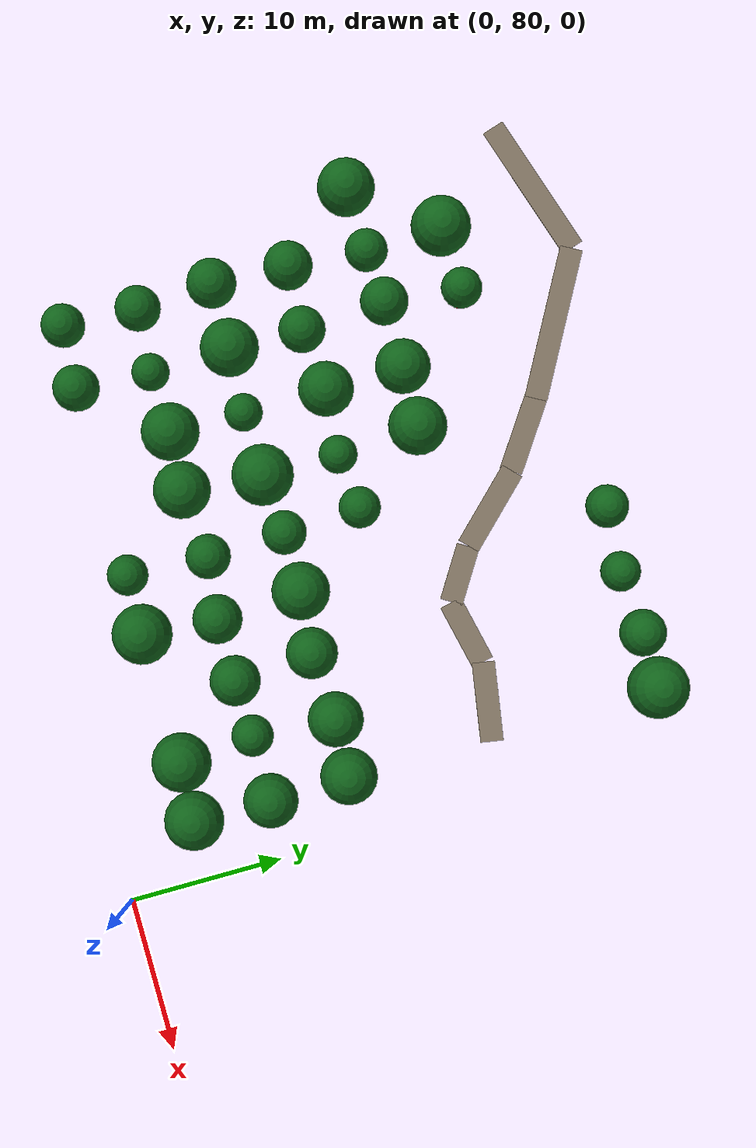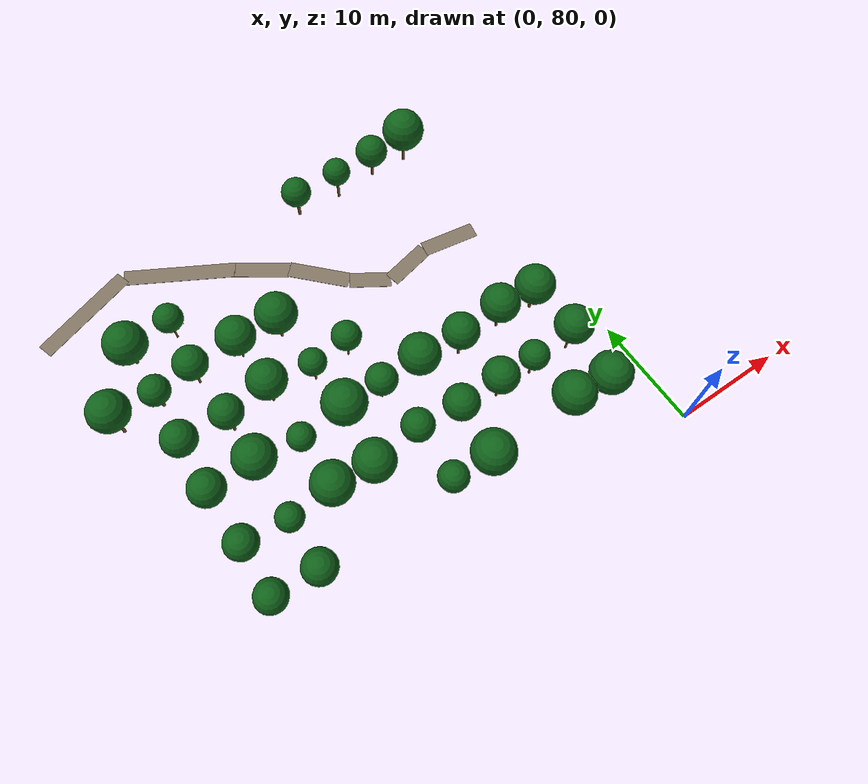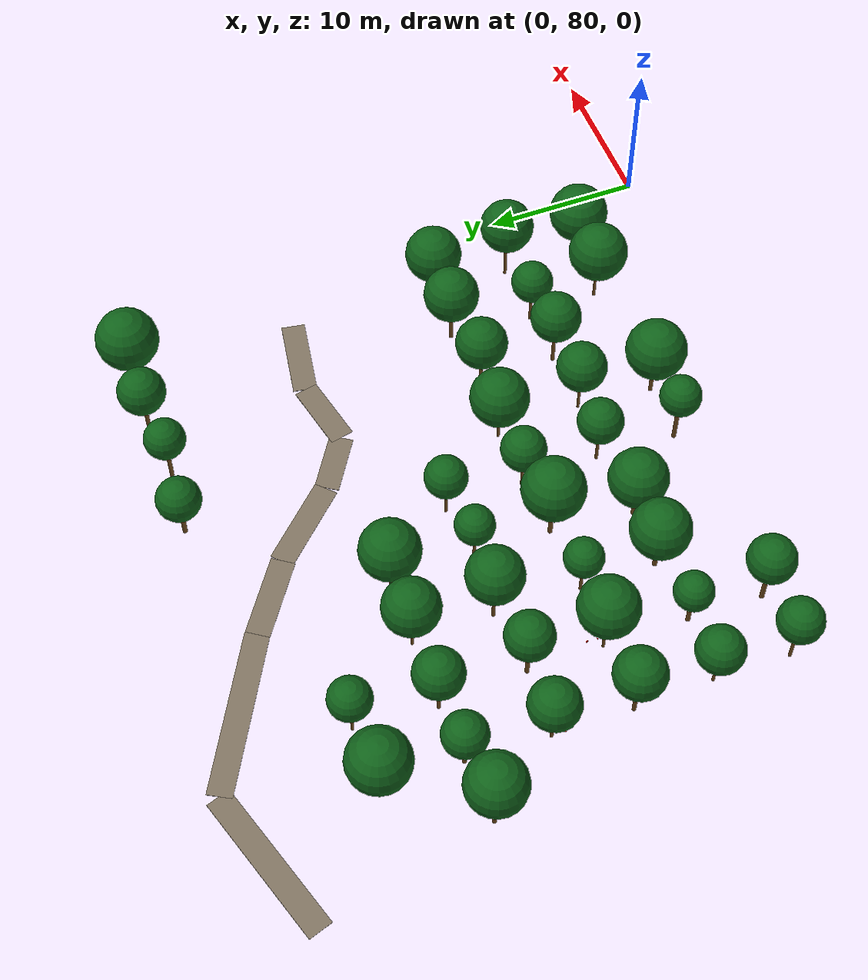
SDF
<sdf version="1.9">
 <world name="cheongsong_orchard">
  <model name="road_53">
   <static>true</static>
   <pose>-6.2 105.7 0.02 0 0 2.9790</pose>
   <link name="link">
    <collision name="collision">
     <geometry><box><size>5.2 1.5 0.04</size></box></geometry>
     <surface><friction><ode><mu>0.9</mu><mu2>0.9</mu2></ode></friction></surface>
    </collision>
    <visual name="visual">
     <geometry><box><size>5.2 1.5 0.04</size></box></geometry>
     <material><ambient>0.4 0.35 0.28 1</ambient><diffuse>0.5 0.45 0.38 1</diffuse></material>
    </visual>
   </link>
  </model>
  <model name="road_54">
   <static>true</static>
   <pose>-10.9 105.6 0.02 0 0 -2.9213</pose>
   <link name="link">
    <collision name="collision">
     <geometry><box><size>4.4 1.5 0.04</size></box></geometry>
     <surface><friction><ode><mu>0.9</mu><mu2>0.9</mu2></ode></friction></surface>
    </collision>
    <visual name="visual">
     <geometry><box><size>4.4 1.5 0.04</size></box></geometry>
     <material><ambient>0.4 0.35 0.28 1</ambient><diffuse>0.5 0.45 0.38 1</diffuse></material>
    </visual>
   </link>
  </model>
  <model name="road_55">
   <static>true</static>
   <pose>-14.7 106.2 0.02 0 0 2.5781</pose>
   <link name="link">
    <collision name="collision">
     <geometry><box><size>3.8 1.5 0.04</size></box></geometry>
     <surface><friction><ode><mu>0.9</mu><mu2>0.9</mu2></ode></friction></surface>
    </collision>
    <visual name="visual">
     <geometry><box><size>3.8 1.5 0.04</size></box></geometry>
     <material><ambient>0.4 0.35 0.28 1</ambient><diffuse>0.5 0.45 0.38 1</diffuse></material>
    </visual>
   </link>
  </model>
  <model name="road_56">
   <static>true</static>
   <pose>-18.3 109.3 0.02 0 0 2.3415</pose>
   <link name="link">
    <collision name="collision">
     <geometry><box><size>5.7 1.5 0.04</size></box></geometry>
     <surface><friction><ode><mu>0.9</mu><mu2>0.9</mu2></ode></friction></surface>
    </collision>
    <visual name="visual">
     <geometry><box><size>5.7 1.5 0.04</size></box></geometry>
     <material><ambient>0.4 0.35 0.28 1</ambient><diffuse>0.5 0.45 0.38 1</diffuse></material>
    </visual>
   </link>
  </model>
  <model name="road_57">
   <static>true</static>
   <pose>-22.4 112.7 0.02 0 0 2.5400</pose>
   <link name="link">
    <collision name="collision">
     <geometry><box><size>5.1 1.5 0.04</size></box></geometry>
     <surface><friction><ode><mu>0.9</mu><mu2>0.9</mu2></ode></friction></surface>
    </collision>
    <visual name="visual">
     <geometry><box><size>5.1 1.5 0.04</size></box></geometry>
     <material><ambient>0.4 0.35 0.28 1</ambient><diffuse>0.5 0.45 0.38 1</diffuse></material>
    </visual>
   </link>
  </model>
  <model name="road_58">
   <static>true</static>
   <pose>-28.9 116.6 0.02 0 0 2.6358</pose>
   <link name="link">
    <collision name="collision">
     <geometry><box><size>10.2 1.5 0.04</size></box></geometry>
     <surface><friction><ode><mu>0.9</mu><mu2>0.9</mu2></ode></friction></surface>
    </collision>
    <visual name="visual">
     <geometry><box><size>10.2 1.5 0.04</size></box></geometry>
     <material><ambient>0.4 0.35 0.28 1</ambient><diffuse>0.5 0.45 0.38 1</diffuse></material>
    </visual>
   </link>
  </model>
  <model name="road_59">
   <static>true</static>
   <pose>-37.9 117.7 0.02 0 0 -2.8319</pose>
   <link name="link">
    <collision name="collision">
     <geometry><box><size>9.5 1.5 0.04</size></box></geometry>
     <surface><friction><ode><mu>0.9</mu><mu2>0.9</mu2></ode></friction></surface>
    </collision>
    <visual name="visual">
     <geometry><box><size>9.5 1.5 0.04</size></box></geometry>
     <material><ambient>0.4 0.35 0.28 1</ambient><diffuse>0.5 0.45 0.38 1</diffuse></material>
    </visual>
   </link>
  </model>
  <model name="apple_tree_2102">
   <static>true</static>
   <pose>-36.42 86.10 0 0 0 0</pose>
   <link name="link">
    <collision name="trunk_col">
     <pose>0 0 1.33 0 0 0</pose>
     <geometry><cylinder><radius>0.100</radius><length>2.65</length></cylinder></geometry>
    </collision>
    <visual name="trunk_vis">
     <pose>0 0 1.33 0 0 0</pose>
     <geometry><cylinder><radius>0.100</radius><length>2.65</length></cylinder></geometry>
     <material><ambient>0.35 0.22 0.08 1</ambient><diffuse>0.45 0.30 0.12 1</diffuse></material>
    </visual>
    <collision name="canopy_col">
     <pose>0 0 4.04 0 0 0</pose>
     <geometry><sphere><radius>1.39</radius></sphere></geometry>
    </collision>
    <visual name="canopy_vis">
     <pose>0 0 4.04 0 0 0</pose>
     <geometry><sphere><radius>1.39</radius></sphere></geometry>
     <material><ambient>0.04 0.28 0.06 1</ambient><diffuse>0.06 0.38 0.10 1</diffuse></material>
    </visual>
   </link>
  </model>
  <model name="apple_tree_2103">
   <static>true</static>
   <pose>-32.36 85.87 0 0 0 0</pose>
   <link name="link">
    <collision name="trunk_col">
     <pose>0 0 1.34 0 0 0</pose>
     <geometry><cylinder><radius>0.145</radius><length>2.68</length></cylinder></geometry>
    </collision>
    <visual name="trunk_vis">
     <pose>0 0 1.34 0 0 0</pose>
     <geometry><cylinder><radius>0.145</radius><length>2.68</length></cylinder></geometry>
     <material><ambient>0.35 0.22 0.08 1</ambient><diffuse>0.45 0.30 0.12 1</diffuse></material>
    </visual>
    <collision name="canopy_col">
     <pose>0 0 4.17 0 0 0</pose>
     <geometry><sphere><radius>1.48</radius></sphere></geometry>
    </collision>
    <visual name="canopy_vis">
     <pose>0 0 4.17 0 0 0</pose>
     <geometry><sphere><radius>1.48</radius></sphere></geometry>
     <material><ambient>0.04 0.28 0.06 1</ambient><diffuse>0.06 0.38 0.10 1</diffuse></material>
    </visual>
   </link>
  </model>
  <model name="apple_tree_2106">
   <static>true</static>
   <pose>-20.15 85.88 0 0 0 0</pose>
   <link name="link">
    <collision name="trunk_col">
     <pose>0 0 1.45 0 0 0</pose>
     <geometry><cylinder><radius>0.137</radius><length>2.90</length></cylinder></geometry>
    </collision>
    <visual name="trunk_vis">
     <pose>0 0 1.45 0 0 0</pose>
     <geometry><cylinder><radius>0.137</radius><length>2.90</length></cylinder></geometry>
     <material><ambient>0.35 0.22 0.08 1</ambient><diffuse>0.45 0.30 0.12 1</diffuse></material>
    </visual>
    <collision name="canopy_col">
     <pose>0 0 4.20 0 0 0</pose>
     <geometry><sphere><radius>1.30</radius></sphere></geometry>
    </collision>
    <visual name="canopy_vis">
     <pose>0 0 4.20 0 0 0</pose>
     <geometry><sphere><radius>1.30</radius></sphere></geometry>
     <material><ambient>0.04 0.28 0.06 1</ambient><diffuse>0.06 0.38 0.10 1</diffuse></material>
    </visual>
   </link>
  </model>
  <model name="apple_tree_2107">
   <static>true</static>
   <pose>-16.34 85.75 0 0 0 0</pose>
   <link name="link">
    <collision name="trunk_col">
     <pose>0 0 1.09 0 0 0</pose>
     <geometry><cylinder><radius>0.123</radius><length>2.19</length></cylinder></geometry>
    </collision>
    <visual name="trunk_vis">
     <pose>0 0 1.09 0 0 0</pose>
     <geometry><cylinder><radius>0.123</radius><length>2.19</length></cylinder></geometry>
     <material><ambient>0.35 0.22 0.08 1</ambient><diffuse>0.45 0.30 0.12 1</diffuse></material>
    </visual>
    <collision name="canopy_col">
     <pose>0 0 4.10 0 0 0</pose>
     <geometry><sphere><radius>1.91</radius></sphere></geometry>
    </collision>
    <visual name="canopy_vis">
     <pose>0 0 4.10 0 0 0</pose>
     <geometry><sphere><radius>1.91</radius></sphere></geometry>
     <material><ambient>0.04 0.28 0.06 1</ambient><diffuse>0.06 0.38 0.10 1</diffuse></material>
    </visual>
   </link>
  </model>
  <model name="apple_tree_2109">
   <static>true</static>
   <pose>-7.97 86.02 0 0 0 0</pose>
   <link name="link">
    <collision name="trunk_col">
     <pose>0 0 1.19 0 0 0</pose>
     <geometry><cylinder><radius>0.096</radius><length>2.39</length></cylinder></geometry>
    </collision>
    <visual name="trunk_vis">
     <pose>0 0 1.19 0 0 0</pose>
     <geometry><cylinder><radius>0.096</radius><length>2.39</length></cylinder></geometry>
     <material><ambient>0.35 0.22 0.08 1</ambient><diffuse>0.45 0.30 0.12 1</diffuse></material>
    </visual>
    <collision name="canopy_col">
     <pose>0 0 4.26 0 0 0</pose>
     <geometry><sphere><radius>1.88</radius></sphere></geometry>
    </collision>
    <visual name="canopy_vis">
     <pose>0 0 4.26 0 0 0</pose>
     <geometry><sphere><radius>1.88</radius></sphere></geometry>
     <material><ambient>0.04 0.28 0.06 1</ambient><diffuse>0.06 0.38 0.10 1</diffuse></material>
    </visual>
   </link>
  </model>
  <model name="apple_tree_2110">
   <static>true</static>
   <pose>-4.24 85.78 0 0 0 0</pose>
   <link name="link">
    <collision name="trunk_col">
     <pose>0 0 1.05 0 0 0</pose>
     <geometry><cylinder><radius>0.142</radius><length>2.10</length></cylinder></geometry>
    </collision>
    <visual name="trunk_vis">
     <pose>0 0 1.05 0 0 0</pose>
     <geometry><cylinder><radius>0.142</radius><length>2.10</length></cylinder></geometry>
     <material><ambient>0.35 0.22 0.08 1</ambient><diffuse>0.45 0.30 0.12 1</diffuse></material>
    </visual>
    <collision name="canopy_col">
     <pose>0 0 3.98 0 0 0</pose>
     <geometry><sphere><radius>1.88</radius></sphere></geometry>
    </collision>
    <visual name="canopy_vis">
     <pose>0 0 3.98 0 0 0</pose>
     <geometry><sphere><radius>1.88</radius></sphere></geometry>
     <material><ambient>0.04 0.28 0.06 1</ambient><diffuse>0.06 0.38 0.10 1</diffuse></material>
    </visual>
   </link>
  </model>
  <model name="apple_tree_2158">
   <static>true</static>
   <pose>-36.32 90.88 0 0 0 0</pose>
   <link name="link">
    <collision name="trunk_col">
     <pose>0 0 1.06 0 0 0</pose>
     <geometry><cylinder><radius>0.091</radius><length>2.11</length></cylinder></geometry>
    </collision>
    <visual name="trunk_vis">
     <pose>0 0 1.06 0 0 0</pose>
     <geometry><cylinder><radius>0.091</radius><length>2.11</length></cylinder></geometry>
     <material><ambient>0.35 0.22 0.08 1</ambient><diffuse>0.45 0.30 0.12 1</diffuse></material>
    </visual>
    <collision name="canopy_col">
     <pose>0 0 3.57 0 0 0</pose>
     <geometry><sphere><radius>1.46</radius></sphere></geometry>
    </collision>
    <visual name="canopy_vis">
     <pose>0 0 3.57 0 0 0</pose>
     <geometry><sphere><radius>1.46</radius></sphere></geometry>
     <material><ambient>0.04 0.28 0.06 1</ambient><diffuse>0.06 0.38 0.10 1</diffuse></material>
    </visual>
   </link>
  </model>
  <model name="apple_tree_2159">
   <static>true</static>
   <pose>-32.26 90.56 0 0 0 0</pose>
   <link name="link">
    <collision name="trunk_col">
     <pose>0 0 1.02 0 0 0</pose>
     <geometry><cylinder><radius>0.136</radius><length>2.03</length></cylinder></geometry>
    </collision>
    <visual name="trunk_vis">
     <pose>0 0 1.02 0 0 0</pose>
     <geometry><cylinder><radius>0.136</radius><length>2.03</length></cylinder></geometry>
     <material><ambient>0.35 0.22 0.08 1</ambient><diffuse>0.45 0.30 0.12 1</diffuse></material>
    </visual>
    <collision name="canopy_col">
     <pose>0 0 3.24 0 0 0</pose>
     <geometry><sphere><radius>1.21</radius></sphere></geometry>
    </collision>
    <visual name="canopy_vis">
     <pose>0 0 3.24 0 0 0</pose>
     <geometry><sphere><radius>1.21</radius></sphere></geometry>
     <material><ambient>0.04 0.28 0.06 1</ambient><diffuse>0.06 0.38 0.10 1</diffuse></material>
    </visual>
   </link>
  </model>
  <model name="apple_tree_2160">
   <static>true</static>
   <pose>-28.17 90.81 0 0 0 0</pose>
   <link name="link">
    <collision name="trunk_col">
     <pose>0 0 1.02 0 0 0</pose>
     <geometry><cylinder><radius>0.148</radius><length>2.04</length></cylinder></geometry>
    </collision>
    <visual name="trunk_vis">
     <pose>0 0 1.02 0 0 0</pose>
     <geometry><cylinder><radius>0.148</radius><length>2.04</length></cylinder></geometry>
     <material><ambient>0.35 0.22 0.08 1</ambient><diffuse>0.45 0.30 0.12 1</diffuse></material>
    </visual>
    <collision name="canopy_col">
     <pose>0 0 3.89 0 0 0</pose>
     <geometry><sphere><radius>1.85</radius></sphere></geometry>
    </collision>
    <visual name="canopy_vis">
     <pose>0 0 3.89 0 0 0</pose>
     <geometry><sphere><radius>1.85</radius></sphere></geometry>
     <material><ambient>0.04 0.28 0.06 1</ambient><diffuse>0.06 0.38 0.10 1</diffuse></material>
    </visual>
   </link>
  </model>
  <model name="apple_tree_2161">
   <static>true</static>
   <pose>-24.44 90.53 0 0 0 0</pose>
   <link name="link">
    <collision name="trunk_col">
     <pose>0 0 0.98 0 0 0</pose>
     <geometry><cylinder><radius>0.145</radius><length>1.95</length></cylinder></geometry>
    </collision>
    <visual name="trunk_vis">
     <pose>0 0 0.98 0 0 0</pose>
     <geometry><cylinder><radius>0.145</radius><length>1.95</length></cylinder></geometry>
     <material><ambient>0.35 0.22 0.08 1</ambient><diffuse>0.45 0.30 0.12 1</diffuse></material>
    </visual>
    <collision name="canopy_col">
     <pose>0 0 3.78 0 0 0</pose>
     <geometry><sphere><radius>1.83</radius></sphere></geometry>
    </collision>
    <visual name="canopy_vis">
     <pose>0 0 3.78 0 0 0</pose>
     <geometry><sphere><radius>1.83</radius></sphere></geometry>
     <material><ambient>0.04 0.28 0.06 1</ambient><diffuse>0.06 0.38 0.10 1</diffuse></material>
    </visual>
   </link>
  </model>
  <model name="apple_tree_2162">
   <static>true</static>
   <pose>-19.95 91.01 0 0 0 0</pose>
   <link name="link">
    <collision name="trunk_col">
     <pose>0 0 1.21 0 0 0</pose>
     <geometry><cylinder><radius>0.099</radius><length>2.43</length></cylinder></geometry>
    </collision>
    <visual name="trunk_vis">
     <pose>0 0 1.21 0 0 0</pose>
     <geometry><cylinder><radius>0.099</radius><length>2.43</length></cylinder></geometry>
     <material><ambient>0.35 0.22 0.08 1</ambient><diffuse>0.45 0.30 0.12 1</diffuse></material>
    </visual>
    <collision name="canopy_col">
     <pose>0 0 3.86 0 0 0</pose>
     <geometry><sphere><radius>1.43</radius></sphere></geometry>
    </collision>
    <visual name="canopy_vis">
     <pose>0 0 3.86 0 0 0</pose>
     <geometry><sphere><radius>1.43</radius></sphere></geometry>
     <material><ambient>0.04 0.28 0.06 1</ambient><diffuse>0.06 0.38 0.10 1</diffuse></material>
    </visual>
   </link>
  </model>
  <model name="apple_tree_2163">
   <static>true</static>
   <pose>-15.99 90.55 0 0 0 0</pose>
   <link name="link">
    <collision name="trunk_col">
     <pose>0 0 1.27 0 0 0</pose>
     <geometry><cylinder><radius>0.090</radius><length>2.55</length></cylinder></geometry>
    </collision>
    <visual name="trunk_vis">
     <pose>0 0 1.27 0 0 0</pose>
     <geometry><cylinder><radius>0.090</radius><length>2.55</length></cylinder></geometry>
     <material><ambient>0.35 0.22 0.08 1</ambient><diffuse>0.45 0.30 0.12 1</diffuse></material>
    </visual>
    <collision name="canopy_col">
     <pose>0 0 4.12 0 0 0</pose>
     <geometry><sphere><radius>1.57</radius></sphere></geometry>
    </collision>
    <visual name="canopy_vis">
     <pose>0 0 4.12 0 0 0</pose>
     <geometry><sphere><radius>1.57</radius></sphere></geometry>
     <material><ambient>0.04 0.28 0.06 1</ambient><diffuse>0.06 0.38 0.10 1</diffuse></material>
    </visual>
   </link>
  </model>
  <model name="apple_tree_2164">
   <static>true</static>
   <pose>-11.98 90.60 0 0 0 0</pose>
   <link name="link">
    <collision name="trunk_col">
     <pose>0 0 1.35 0 0 0</pose>
     <geometry><cylinder><radius>0.116</radius><length>2.71</length></cylinder></geometry>
    </collision>
    <visual name="trunk_vis">
     <pose>0 0 1.35 0 0 0</pose>
     <geometry><cylinder><radius>0.116</radius><length>2.71</length></cylinder></geometry>
     <material><ambient>0.35 0.22 0.08 1</ambient><diffuse>0.45 0.30 0.12 1</diffuse></material>
    </visual>
    <collision name="canopy_col">
     <pose>0 0 4.30 0 0 0</pose>
     <geometry><sphere><radius>1.60</radius></sphere></geometry>
    </collision>
    <visual name="canopy_vis">
     <pose>0 0 4.30 0 0 0</pose>
     <geometry><sphere><radius>1.60</radius></sphere></geometry>
     <material><ambient>0.04 0.28 0.06 1</ambient><diffuse>0.06 0.38 0.10 1</diffuse></material>
    </visual>
   </link>
  </model>
  <model name="apple_tree_2165">
   <static>true</static>
   <pose>-8.36 90.68 0 0 0 0</pose>
   <link name="link">
    <collision name="trunk_col">
     <pose>0 0 1.17 0 0 0</pose>
     <geometry><cylinder><radius>0.104</radius><length>2.33</length></cylinder></geometry>
    </collision>
    <visual name="trunk_vis">
     <pose>0 0 1.17 0 0 0</pose>
     <geometry><cylinder><radius>0.104</radius><length>2.33</length></cylinder></geometry>
     <material><ambient>0.35 0.22 0.08 1</ambient><diffuse>0.45 0.30 0.12 1</diffuse></material>
    </visual>
    <collision name="canopy_col">
     <pose>0 0 3.66 0 0 0</pose>
     <geometry><sphere><radius>1.33</radius></sphere></geometry>
    </collision>
    <visual name="canopy_vis">
     <pose>0 0 3.66 0 0 0</pose>
     <geometry><sphere><radius>1.33</radius></sphere></geometry>
     <material><ambient>0.04 0.28 0.06 1</ambient><diffuse>0.06 0.38 0.10 1</diffuse></material>
    </visual>
   </link>
  </model>
  <model name="apple_tree_2166">
   <static>true</static>
   <pose>-4.21 90.78 0 0 0 0</pose>
   <link name="link">
    <collision name="trunk_col">
     <pose>0 0 1.44 0 0 0</pose>
     <geometry><cylinder><radius>0.101</radius><length>2.88</length></cylinder></geometry>
    </collision>
    <visual name="trunk_vis">
     <pose>0 0 1.44 0 0 0</pose>
     <geometry><cylinder><radius>0.101</radius><length>2.88</length></cylinder></geometry>
     <material><ambient>0.35 0.22 0.08 1</ambient><diffuse>0.45 0.30 0.12 1</diffuse></material>
    </visual>
    <collision name="canopy_col">
     <pose>0 0 4.60 0 0 0</pose>
     <geometry><sphere><radius>1.72</radius></sphere></geometry>
    </collision>
    <visual name="canopy_vis">
     <pose>0 0 4.60 0 0 0</pose>
     <geometry><sphere><radius>1.72</radius></sphere></geometry>
     <material><ambient>0.04 0.28 0.06 1</ambient><diffuse>0.06 0.38 0.10 1</diffuse></material>
    </visual>
   </link>
  </model>
  <model name="apple_tree_2199">
   <static>true</static>
   <pose>-36.43 95.82 0 0 0 0</pose>
   <link name="link">
    <collision name="trunk_col">
     <pose>0 0 1.35 0 0 0</pose>
     <geometry><cylinder><radius>0.122</radius><length>2.70</length></cylinder></geometry>
    </collision>
    <visual name="trunk_vis">
     <pose>0 0 1.35 0 0 0</pose>
     <geometry><cylinder><radius>0.122</radius><length>2.70</length></cylinder></geometry>
     <material><ambient>0.35 0.22 0.08 1</ambient><diffuse>0.45 0.30 0.12 1</diffuse></material>
    </visual>
    <collision name="canopy_col">
     <pose>0 0 4.28 0 0 0</pose>
     <geometry><sphere><radius>1.58</radius></sphere></geometry>
    </collision>
    <visual name="canopy_vis">
     <pose>0 0 4.28 0 0 0</pose>
     <geometry><sphere><radius>1.58</radius></sphere></geometry>
     <material><ambient>0.04 0.28 0.06 1</ambient><diffuse>0.06 0.38 0.10 1</diffuse></material>
    </visual>
   </link>
  </model>
  <model name="apple_tree_2200">
   <static>true</static>
   <pose>-32.16 95.84 0 0 0 0</pose>
   <link name="link">
    <collision name="trunk_col">
     <pose>0 0 1.35 0 0 0</pose>
     <geometry><cylinder><radius>0.088</radius><length>2.69</length></cylinder></geometry>
    </collision>
    <visual name="trunk_vis">
     <pose>0 0 1.35 0 0 0</pose>
     <geometry><cylinder><radius>0.088</radius><length>2.69</length></cylinder></geometry>
     <material><ambient>0.35 0.22 0.08 1</ambient><diffuse>0.45 0.30 0.12 1</diffuse></material>
    </visual>
    <collision name="canopy_col">
     <pose>0 0 4.54 0 0 0</pose>
     <geometry><sphere><radius>1.85</radius></sphere></geometry>
    </collision>
    <visual name="canopy_vis">
     <pose>0 0 4.54 0 0 0</pose>
     <geometry><sphere><radius>1.85</radius></sphere></geometry>
     <material><ambient>0.04 0.28 0.06 1</ambient><diffuse>0.06 0.38 0.10 1</diffuse></material>
    </visual>
   </link>
  </model>
  <model name="apple_tree_2201">
   <static>true</static>
   <pose>-28.17 95.56 0 0 0 0</pose>
   <link name="link">
    <collision name="trunk_col">
     <pose>0 0 1.13 0 0 0</pose>
     <geometry><cylinder><radius>0.101</radius><length>2.25</length></cylinder></geometry>
    </collision>
    <visual name="trunk_vis">
     <pose>0 0 1.13 0 0 0</pose>
     <geometry><cylinder><radius>0.101</radius><length>2.25</length></cylinder></geometry>
     <material><ambient>0.35 0.22 0.08 1</ambient><diffuse>0.45 0.30 0.12 1</diffuse></material>
    </visual>
    <collision name="canopy_col">
     <pose>0 0 3.47 0 0 0</pose>
     <geometry><sphere><radius>1.22</radius></sphere></geometry>
    </collision>
    <visual name="canopy_vis">
     <pose>0 0 3.47 0 0 0</pose>
     <geometry><sphere><radius>1.22</radius></sphere></geometry>
     <material><ambient>0.04 0.28 0.06 1</ambient><diffuse>0.06 0.38 0.10 1</diffuse></material>
    </visual>
   </link>
  </model>
  <model name="apple_tree_2202">
   <static>true</static>
   <pose>-23.90 95.71 0 0 0 0</pose>
   <link name="link">
    <collision name="trunk_col">
     <pose>0 0 1.32 0 0 0</pose>
     <geometry><cylinder><radius>0.141</radius><length>2.64</length></cylinder></geometry>
    </collision>
    <visual name="trunk_vis">
     <pose>0 0 1.32 0 0 0</pose>
     <geometry><cylinder><radius>0.141</radius><length>2.64</length></cylinder></geometry>
     <material><ambient>0.35 0.22 0.08 1</ambient><diffuse>0.45 0.30 0.12 1</diffuse></material>
    </visual>
    <collision name="canopy_col">
     <pose>0 0 4.59 0 0 0</pose>
     <geometry><sphere><radius>1.95</radius></sphere></geometry>
    </collision>
    <visual name="canopy_vis">
     <pose>0 0 4.59 0 0 0</pose>
     <geometry><sphere><radius>1.95</radius></sphere></geometry>
     <material><ambient>0.04 0.28 0.06 1</ambient><diffuse>0.06 0.38 0.10 1</diffuse></material>
    </visual>
   </link>
  </model>
  <model name="apple_tree_2203">
   <static>true</static>
   <pose>-20.13 96.02 0 0 0 0</pose>
   <link name="link">
    <collision name="trunk_col">
     <pose>0 0 1.15 0 0 0</pose>
     <geometry><cylinder><radius>0.087</radius><length>2.30</length></cylinder></geometry>
    </collision>
    <visual name="trunk_vis">
     <pose>0 0 1.15 0 0 0</pose>
     <geometry><cylinder><radius>0.087</radius><length>2.30</length></cylinder></geometry>
     <material><ambient>0.35 0.22 0.08 1</ambient><diffuse>0.45 0.30 0.12 1</diffuse></material>
    </visual>
    <collision name="canopy_col">
     <pose>0 0 3.71 0 0 0</pose>
     <geometry><sphere><radius>1.41</radius></sphere></geometry>
    </collision>
    <visual name="canopy_vis">
     <pose>0 0 3.71 0 0 0</pose>
     <geometry><sphere><radius>1.41</radius></sphere></geometry>
     <material><ambient>0.04 0.28 0.06 1</ambient><diffuse>0.06 0.38 0.10 1</diffuse></material>
    </visual>
   </link>
  </model>
  <model name="apple_tree_2204">
   <static>true</static>
   <pose>-16.29 96.04 0 0 0 0</pose>
   <link name="link">
    <collision name="trunk_col">
     <pose>0 0 1.06 0 0 0</pose>
     <geometry><cylinder><radius>0.095</radius><length>2.13</length></cylinder></geometry>
    </collision>
    <visual name="trunk_vis">
     <pose>0 0 1.06 0 0 0</pose>
     <geometry><cylinder><radius>0.095</radius><length>2.13</length></cylinder></geometry>
     <material><ambient>0.35 0.22 0.08 1</ambient><diffuse>0.45 0.30 0.12 1</diffuse></material>
    </visual>
    <collision name="canopy_col">
     <pose>0 0 3.97 0 0 0</pose>
     <geometry><sphere><radius>1.84</radius></sphere></geometry>
    </collision>
    <visual name="canopy_vis">
     <pose>0 0 3.97 0 0 0</pose>
     <geometry><sphere><radius>1.84</radius></sphere></geometry>
     <material><ambient>0.04 0.28 0.06 1</ambient><diffuse>0.06 0.38 0.10 1</diffuse></material>
    </visual>
   </link>
  </model>
  <model name="apple_tree_2205">
   <static>true</static>
   <pose>-12.35 95.68 0 0 0 0</pose>
   <link name="link">
    <collision name="trunk_col">
     <pose>0 0 1.39 0 0 0</pose>
     <geometry><cylinder><radius>0.119</radius><length>2.77</length></cylinder></geometry>
    </collision>
    <visual name="trunk_vis">
     <pose>0 0 1.39 0 0 0</pose>
     <geometry><cylinder><radius>0.119</radius><length>2.77</length></cylinder></geometry>
     <material><ambient>0.35 0.22 0.08 1</ambient><diffuse>0.45 0.30 0.12 1</diffuse></material>
    </visual>
    <collision name="canopy_col">
     <pose>0 0 4.40 0 0 0</pose>
     <geometry><sphere><radius>1.63</radius></sphere></geometry>
    </collision>
    <visual name="canopy_vis">
     <pose>0 0 4.40 0 0 0</pose>
     <geometry><sphere><radius>1.63</radius></sphere></geometry>
     <material><ambient>0.04 0.28 0.06 1</ambient><diffuse>0.06 0.38 0.10 1</diffuse></material>
    </visual>
   </link>
  </model>
  <model name="apple_tree_2206">
   <static>true</static>
   <pose>-7.97 96.00 0 0 0 0</pose>
   <link name="link">
    <collision name="trunk_col">
     <pose>0 0 1.24 0 0 0</pose>
     <geometry><cylinder><radius>0.120</radius><length>2.49</length></cylinder></geometry>
    </collision>
    <visual name="trunk_vis">
     <pose>0 0 1.24 0 0 0</pose>
     <geometry><cylinder><radius>0.120</radius><length>2.49</length></cylinder></geometry>
     <material><ambient>0.35 0.22 0.08 1</ambient><diffuse>0.45 0.30 0.12 1</diffuse></material>
    </visual>
    <collision name="canopy_col">
     <pose>0 0 4.24 0 0 0</pose>
     <geometry><sphere><radius>1.75</radius></sphere></geometry>
    </collision>
    <visual name="canopy_vis">
     <pose>0 0 4.24 0 0 0</pose>
     <geometry><sphere><radius>1.75</radius></sphere></geometry>
     <material><ambient>0.04 0.28 0.06 1</ambient><diffuse>0.06 0.38 0.10 1</diffuse></material>
    </visual>
   </link>
  </model>
  <model name="apple_tree_2207">
   <static>true</static>
   <pose>-4.31 95.84 0 0 0 0</pose>
   <link name="link">
    <collision name="trunk_col">
     <pose>0 0 1.12 0 0 0</pose>
     <geometry><cylinder><radius>0.143</radius><length>2.24</length></cylinder></geometry>
    </collision>
    <visual name="trunk_vis">
     <pose>0 0 1.12 0 0 0</pose>
     <geometry><cylinder><radius>0.143</radius><length>2.24</length></cylinder></geometry>
     <material><ambient>0.35 0.22 0.08 1</ambient><diffuse>0.45 0.30 0.12 1</diffuse></material>
    </visual>
    <collision name="canopy_col">
     <pose>0 0 4.04 0 0 0</pose>
     <geometry><sphere><radius>1.80</radius></sphere></geometry>
    </collision>
    <visual name="canopy_vis">
     <pose>0 0 4.04 0 0 0</pose>
     <geometry><sphere><radius>1.80</radius></sphere></geometry>
     <material><ambient>0.04 0.28 0.06 1</ambient><diffuse>0.06 0.38 0.10 1</diffuse></material>
    </visual>
   </link>
  </model>
  <model name="apple_tree_2240">
   <static>true</static>
   <pose>-36.32 100.77 0 0 0 0</pose>
   <link name="link">
    <collision name="trunk_col">
     <pose>0 0 1.15 0 0 0</pose>
     <geometry><cylinder><radius>0.105</radius><length>2.29</length></cylinder></geometry>
    </collision>
    <visual name="trunk_vis">
     <pose>0 0 1.15 0 0 0</pose>
     <geometry><cylinder><radius>0.105</radius><length>2.29</length></cylinder></geometry>
     <material><ambient>0.35 0.22 0.08 1</ambient><diffuse>0.45 0.30 0.12 1</diffuse></material>
    </visual>
    <collision name="canopy_col">
     <pose>0 0 3.85 0 0 0</pose>
     <geometry><sphere><radius>1.56</radius></sphere></geometry>
    </collision>
    <visual name="canopy_vis">
     <pose>0 0 3.85 0 0 0</pose>
     <geometry><sphere><radius>1.56</radius></sphere></geometry>
     <material><ambient>0.04 0.28 0.06 1</ambient><diffuse>0.06 0.38 0.10 1</diffuse></material>
    </visual>
   </link>
  </model>
  <model name="apple_tree_2241">
   <static>true</static>
   <pose>-32.12 100.53 0 0 0 0</pose>
   <link name="link">
    <collision name="trunk_col">
     <pose>0 0 1.33 0 0 0</pose>
     <geometry><cylinder><radius>0.131</radius><length>2.66</length></cylinder></geometry>
    </collision>
    <visual name="trunk_vis">
     <pose>0 0 1.33 0 0 0</pose>
     <geometry><cylinder><radius>0.131</radius><length>2.66</length></cylinder></geometry>
     <material><ambient>0.35 0.22 0.08 1</ambient><diffuse>0.45 0.30 0.12 1</diffuse></material>
    </visual>
    <collision name="canopy_col">
     <pose>0 0 4.15 0 0 0</pose>
     <geometry><sphere><radius>1.49</radius></sphere></geometry>
    </collision>
    <visual name="canopy_vis">
     <pose>0 0 4.15 0 0 0</pose>
     <geometry><sphere><radius>1.49</radius></sphere></geometry>
     <material><ambient>0.04 0.28 0.06 1</ambient><diffuse>0.06 0.38 0.10 1</diffuse></material>
    </visual>
   </link>
  </model>
  <model name="apple_tree_2242">
   <static>true</static>
   <pose>-28.04 100.97 0 0 0 0</pose>
   <link name="link">
    <collision name="trunk_col">
     <pose>0 0 1.38 0 0 0</pose>
     <geometry><cylinder><radius>0.110</radius><length>2.76</length></cylinder></geometry>
    </collision>
    <visual name="trunk_vis">
     <pose>0 0 1.38 0 0 0</pose>
     <geometry><cylinder><radius>0.110</radius><length>2.76</length></cylinder></geometry>
     <material><ambient>0.35 0.22 0.08 1</ambient><diffuse>0.45 0.30 0.12 1</diffuse></material>
    </visual>
    <collision name="canopy_col">
     <pose>0 0 4.51 0 0 0</pose>
     <geometry><sphere><radius>1.75</radius></sphere></geometry>
    </collision>
    <visual name="canopy_vis">
     <pose>0 0 4.51 0 0 0</pose>
     <geometry><sphere><radius>1.75</radius></sphere></geometry>
     <material><ambient>0.04 0.28 0.06 1</ambient><diffuse>0.06 0.38 0.10 1</diffuse></material>
    </visual>
   </link>
  </model>
  <model name="apple_tree_2243">
   <static>true</static>
   <pose>-23.99 100.61 0 0 0 0</pose>
   <link name="link">
    <collision name="trunk_col">
     <pose>0 0 1.16 0 0 0</pose>
     <geometry><cylinder><radius>0.092</radius><length>2.32</length></cylinder></geometry>
    </collision>
    <visual name="trunk_vis">
     <pose>0 0 1.16 0 0 0</pose>
     <geometry><cylinder><radius>0.092</radius><length>2.32</length></cylinder></geometry>
     <material><ambient>0.35 0.22 0.08 1</ambient><diffuse>0.45 0.30 0.12 1</diffuse></material>
    </visual>
    <collision name="canopy_col">
     <pose>0 0 3.55 0 0 0</pose>
     <geometry><sphere><radius>1.23</radius></sphere></geometry>
    </collision>
    <visual name="canopy_vis">
     <pose>0 0 3.55 0 0 0</pose>
     <geometry><sphere><radius>1.23</radius></sphere></geometry>
     <material><ambient>0.04 0.28 0.06 1</ambient><diffuse>0.06 0.38 0.10 1</diffuse></material>
    </visual>
   </link>
  </model>
  <model name="apple_tree_2244">
   <static>true</static>
   <pose>-20.38 101.02 0 0 0 0</pose>
   <link name="link">
    <collision name="trunk_col">
     <pose>0 0 1.18 0 0 0</pose>
     <geometry><cylinder><radius>0.086</radius><length>2.36</length></cylinder></geometry>
    </collision>
    <visual name="trunk_vis">
     <pose>0 0 1.18 0 0 0</pose>
     <geometry><cylinder><radius>0.086</radius><length>2.36</length></cylinder></geometry>
     <material><ambient>0.35 0.22 0.08 1</ambient><diffuse>0.45 0.30 0.12 1</diffuse></material>
    </visual>
    <collision name="canopy_col">
     <pose>0 0 3.69 0 0 0</pose>
     <geometry><sphere><radius>1.33</radius></sphere></geometry>
    </collision>
    <visual name="canopy_vis">
     <pose>0 0 3.69 0 0 0</pose>
     <geometry><sphere><radius>1.33</radius></sphere></geometry>
     <material><ambient>0.04 0.28 0.06 1</ambient><diffuse>0.06 0.38 0.10 1</diffuse></material>
    </visual>
   </link>
  </model>
  <model name="apple_tree_2285">
   <static>true</static>
   <pose>-39.89 105.57 0 0 0 0</pose>
   <link name="link">
    <collision name="trunk_col">
     <pose>0 0 1.44 0 0 0</pose>
     <geometry><cylinder><radius>0.140</radius><length>2.89</length></cylinder></geometry>
    </collision>
    <visual name="trunk_vis">
     <pose>0 0 1.44 0 0 0</pose>
     <geometry><cylinder><radius>0.140</radius><length>2.89</length></cylinder></geometry>
     <material><ambient>0.35 0.22 0.08 1</ambient><diffuse>0.45 0.30 0.12 1</diffuse></material>
    </visual>
    <collision name="canopy_col">
     <pose>0 0 4.71 0 0 0</pose>
     <geometry><sphere><radius>1.82</radius></sphere></geometry>
    </collision>
    <visual name="canopy_vis">
     <pose>0 0 4.71 0 0 0</pose>
     <geometry><sphere><radius>1.82</radius></sphere></geometry>
     <material><ambient>0.04 0.28 0.06 1</ambient><diffuse>0.06 0.38 0.10 1</diffuse></material>
    </visual>
   </link>
  </model>
  <model name="apple_tree_2286">
   <static>true</static>
   <pose>-36.06 105.83 0 0 0 0</pose>
   <link name="link">
    <collision name="trunk_col">
     <pose>0 0 0.98 0 0 0</pose>
     <geometry><cylinder><radius>0.144</radius><length>1.96</length></cylinder></geometry>
    </collision>
    <visual name="trunk_vis">
     <pose>0 0 0.98 0 0 0</pose>
     <geometry><cylinder><radius>0.144</radius><length>1.96</length></cylinder></geometry>
     <material><ambient>0.35 0.22 0.08 1</ambient><diffuse>0.45 0.30 0.12 1</diffuse></material>
    </visual>
    <collision name="canopy_col">
     <pose>0 0 3.33 0 0 0</pose>
     <geometry><sphere><radius>1.37</radius></sphere></geometry>
    </collision>
    <visual name="canopy_vis">
     <pose>0 0 3.33 0 0 0</pose>
     <geometry><sphere><radius>1.37</radius></sphere></geometry>
     <material><ambient>0.04 0.28 0.06 1</ambient><diffuse>0.06 0.38 0.10 1</diffuse></material>
    </visual>
   </link>
  </model>
  <model name="apple_tree_2287">
   <static>true</static>
   <pose>-32.47 106.00 0 0 0 0</pose>
   <link name="link">
    <collision name="trunk_col">
     <pose>0 0 1.26 0 0 0</pose>
     <geometry><cylinder><radius>0.103</radius><length>2.52</length></cylinder></geometry>
    </collision>
    <visual name="trunk_vis">
     <pose>0 0 1.26 0 0 0</pose>
     <geometry><cylinder><radius>0.103</radius><length>2.52</length></cylinder></geometry>
     <material><ambient>0.35 0.22 0.08 1</ambient><diffuse>0.45 0.30 0.12 1</diffuse></material>
    </visual>
    <collision name="canopy_col">
     <pose>0 0 4.05 0 0 0</pose>
     <geometry><sphere><radius>1.53</radius></sphere></geometry>
    </collision>
    <visual name="canopy_vis">
     <pose>0 0 4.05 0 0 0</pose>
     <geometry><sphere><radius>1.53</radius></sphere></geometry>
     <material><ambient>0.04 0.28 0.06 1</ambient><diffuse>0.06 0.38 0.10 1</diffuse></material>
    </visual>
   </link>
  </model>
  <model name="apple_tree_2288">
   <static>true</static>
   <pose>-28.16 106.01 0 0 0 0</pose>
   <link name="link">
    <collision name="trunk_col">
     <pose>0 0 1.23 0 0 0</pose>
     <geometry><cylinder><radius>0.081</radius><length>2.46</length></cylinder></geometry>
    </collision>
    <visual name="trunk_vis">
     <pose>0 0 1.23 0 0 0</pose>
     <geometry><cylinder><radius>0.081</radius><length>2.46</length></cylinder></geometry>
     <material><ambient>0.35 0.22 0.08 1</ambient><diffuse>0.45 0.30 0.12 1</diffuse></material>
    </visual>
    <collision name="canopy_col">
     <pose>0 0 4.21 0 0 0</pose>
     <geometry><sphere><radius>1.75</radius></sphere></geometry>
    </collision>
    <visual name="canopy_vis">
     <pose>0 0 4.21 0 0 0</pose>
     <geometry><sphere><radius>1.75</radius></sphere></geometry>
     <material><ambient>0.04 0.28 0.06 1</ambient><diffuse>0.06 0.38 0.10 1</diffuse></material>
    </visual>
   </link>
  </model>
  <model name="apple_tree_2289">
   <static>true</static>
   <pose>-24.29 105.89 0 0 0 0</pose>
   <link name="link">
    <collision name="trunk_col">
     <pose>0 0 1.22 0 0 0</pose>
     <geometry><cylinder><radius>0.131</radius><length>2.43</length></cylinder></geometry>
    </collision>
    <visual name="trunk_vis">
     <pose>0 0 1.22 0 0 0</pose>
     <geometry><cylinder><radius>0.131</radius><length>2.43</length></cylinder></geometry>
     <material><ambient>0.35 0.22 0.08 1</ambient><diffuse>0.45 0.30 0.12 1</diffuse></material>
    </visual>
    <collision name="canopy_col">
     <pose>0 0 4.29 0 0 0</pose>
     <geometry><sphere><radius>1.86</radius></sphere></geometry>
    </collision>
    <visual name="canopy_vis">
     <pose>0 0 4.29 0 0 0</pose>
     <geometry><sphere><radius>1.86</radius></sphere></geometry>
     <material><ambient>0.04 0.28 0.06 1</ambient><diffuse>0.06 0.38 0.10 1</diffuse></material>
    </visual>
   </link>
  </model>
  <model name="apple_tree_2329">
   <static>true</static>
   <pose>-36.13 110.74 0 0 0 0</pose>
   <link name="link">
    <collision name="trunk_col">
     <pose>0 0 1.00 0 0 0</pose>
     <geometry><cylinder><radius>0.146</radius><length>2.01</length></cylinder></geometry>
    </collision>
    <visual name="trunk_vis">
     <pose>0 0 1.00 0 0 0</pose>
     <geometry><cylinder><radius>0.146</radius><length>2.01</length></cylinder></geometry>
     <material><ambient>0.35 0.22 0.08 1</ambient><diffuse>0.45 0.30 0.12 1</diffuse></material>
    </visual>
    <collision name="canopy_col">
     <pose>0 0 3.92 0 0 0</pose>
     <geometry><sphere><radius>1.91</radius></sphere></geometry>
    </collision>
    <visual name="canopy_vis">
     <pose>0 0 3.92 0 0 0</pose>
     <geometry><sphere><radius>1.91</radius></sphere></geometry>
     <material><ambient>0.04 0.28 0.06 1</ambient><diffuse>0.06 0.38 0.10 1</diffuse></material>
    </visual>
   </link>
  </model>
  <model name="apple_tree_2330">
   <static>true</static>
   <pose>-32.05 110.97 0 0 0 0</pose>
   <link name="link">
    <collision name="trunk_col">
     <pose>0 0 1.18 0 0 0</pose>
     <geometry><cylinder><radius>0.089</radius><length>2.35</length></cylinder></geometry>
    </collision>
    <visual name="trunk_vis">
     <pose>0 0 1.18 0 0 0</pose>
     <geometry><cylinder><radius>0.089</radius><length>2.35</length></cylinder></geometry>
     <material><ambient>0.35 0.22 0.08 1</ambient><diffuse>0.45 0.30 0.12 1</diffuse></material>
    </visual>
    <collision name="canopy_col">
     <pose>0 0 3.66 0 0 0</pose>
     <geometry><sphere><radius>1.31</radius></sphere></geometry>
    </collision>
    <visual name="canopy_vis">
     <pose>0 0 3.66 0 0 0</pose>
     <geometry><sphere><radius>1.31</radius></sphere></geometry>
     <material><ambient>0.04 0.28 0.06 1</ambient><diffuse>0.06 0.38 0.10 1</diffuse></material>
    </visual>
   </link>
  </model>
  <model name="apple_tree_2366">
   <static>true</static>
   <pose>-16.26 116.09 0 0 0 0</pose>
   <link name="link">
    <collision name="trunk_col">
     <pose>0 0 1.06 0 0 0</pose>
     <geometry><cylinder><radius>0.146</radius><length>2.12</length></cylinder></geometry>
    </collision>
    <visual name="trunk_vis">
     <pose>0 0 1.06 0 0 0</pose>
     <geometry><cylinder><radius>0.146</radius><length>2.12</length></cylinder></geometry>
     <material><ambient>0.35 0.22 0.08 1</ambient><diffuse>0.45 0.30 0.12 1</diffuse></material>
    </visual>
    <collision name="canopy_col">
     <pose>0 0 3.49 0 0 0</pose>
     <geometry><sphere><radius>1.38</radius></sphere></geometry>
    </collision>
    <visual name="canopy_vis">
     <pose>0 0 3.49 0 0 0</pose>
     <geometry><sphere><radius>1.38</radius></sphere></geometry>
     <material><ambient>0.04 0.28 0.06 1</ambient><diffuse>0.06 0.38 0.10 1</diffuse></material>
    </visual>
   </link>
  </model>
  <model name="apple_tree_2367">
   <static>true</static>
   <pose>-12.07 115.72 0 0 0 0</pose>
   <link name="link">
    <collision name="trunk_col">
     <pose>0 0 1.27 0 0 0</pose>
     <geometry><cylinder><radius>0.128</radius><length>2.54</length></cylinder></geometry>
    </collision>
    <visual name="trunk_vis">
     <pose>0 0 1.27 0 0 0</pose>
     <geometry><cylinder><radius>0.128</radius><length>2.54</length></cylinder></geometry>
     <material><ambient>0.35 0.22 0.08 1</ambient><diffuse>0.45 0.30 0.12 1</diffuse></material>
    </visual>
    <collision name="canopy_col">
     <pose>0 0 3.82 0 0 0</pose>
     <geometry><sphere><radius>1.28</radius></sphere></geometry>
    </collision>
    <visual name="canopy_vis">
     <pose>0 0 3.82 0 0 0</pose>
     <geometry><sphere><radius>1.28</radius></sphere></geometry>
     <material><ambient>0.04 0.28 0.06 1</ambient><diffuse>0.06 0.38 0.10 1</diffuse></material>
    </visual>
   </link>
  </model>
  <model name="apple_tree_2368">
   <static>true</static>
   <pose>-7.97 116.07 0 0 0 0</pose>
   <link name="link">
    <collision name="trunk_col">
     <pose>0 0 1.03 0 0 0</pose>
     <geometry><cylinder><radius>0.130</radius><length>2.05</length></cylinder></geometry>
    </collision>
    <visual name="trunk_vis">
     <pose>0 0 1.03 0 0 0</pose>
     <geometry><cylinder><radius>0.130</radius><length>2.05</length></cylinder></geometry>
     <material><ambient>0.35 0.22 0.08 1</ambient><diffuse>0.45 0.30 0.12 1</diffuse></material>
    </visual>
    <collision name="canopy_col">
     <pose>0 0 3.55 0 0 0</pose>
     <geometry><sphere><radius>1.50</radius></sphere></geometry>
    </collision>
    <visual name="canopy_vis">
     <pose>0 0 3.55 0 0 0</pose>
     <geometry><sphere><radius>1.50</radius></sphere></geometry>
     <material><ambient>0.04 0.28 0.06 1</ambient><diffuse>0.06 0.38 0.10 1</diffuse></material>
    </visual>
   </link>
  </model>
  <model name="apple_tree_2369">
   <static>true</static>
   <pose>-4.47 115.90 0 0 0 0</pose>
   <link name="link">
    <collision name="trunk_col">
     <pose>0 0 1.23 0 0 0</pose>
     <geometry><cylinder><radius>0.147</radius><length>2.46</length></cylinder></geometry>
    </collision>
    <visual name="trunk_vis">
     <pose>0 0 1.23 0 0 0</pose>
     <geometry><cylinder><radius>0.147</radius><length>2.46</length></cylinder></geometry>
     <material><ambient>0.35 0.22 0.08 1</ambient><diffuse>0.45 0.30 0.12 1</diffuse></material>
    </visual>
    <collision name="canopy_col">
     <pose>0 0 4.42 0 0 0</pose>
     <geometry><sphere><radius>1.96</radius></sphere></geometry>
    </collision>
    <visual name="canopy_vis">
     <pose>0 0 4.42 0 0 0</pose>
     <geometry><sphere><radius>1.96</radius></sphere></geometry>
     <material><ambient>0.04 0.28 0.06 1</ambient><diffuse>0.06 0.38 0.10 1</diffuse></material>
    </visual>
   </link>
  </model>
  <model name="apple_2110_2">
   <static>true</static>
   <pose>-4.42 86.05 2.01 0 0 0</pose>
   <link name="link">
    <visual name="visual">
     <geometry><sphere><radius>0.04</radius></sphere></geometry>
     <material><ambient>0.7 0.05 0.02 1</ambient><diffuse>0.9 0.10 0.05 1</diffuse></material>
    </visual>
   </link>
  </model>
  <model name="apple_2110_3">
   <static>true</static>
   <pose>-4.88 86.32 1.61 0 0 0</pose>
   <link name="link">
    <visual name="visual">
     <geometry><sphere><radius>0.04</radius></sphere></geometry>
     <material><ambient>0.7 0.05 0.02 1</ambient><diffuse>0.9 0.10 0.05 1</diffuse></material>
    </visual>
   </link>
  </model>
  <model name="apple_2160_0">
   <static>true</static>
   <pose>-27.96 91.10 1.91 0 0 0</pose>
   <link name="link">
    <visual name="visual">
     <geometry><sphere><radius>0.04</radius></sphere></geometry>
     <material><ambient>0.7 0.05 0.02 1</ambient><diffuse>0.9 0.10 0.05 1</diffuse></material>
    </visual>
   </link>
  </model>
  <model name="apple_2160_1">
   <static>true</static>
   <pose>-27.54 90.94 2.39 0 0 0</pose>
   <link name="link">
    <visual name="visual">
     <geometry><sphere><radius>0.04</radius></sphere></geometry>
     <material><ambient>0.7 0.05 0.02 1</ambient><diffuse>0.9 0.10 0.05 1</diffuse></material>
    </visual>
   </link>
  </model>
  <model name="apple_2160_2">
   <static>true</static>
   <pose>-28.76 89.56 2.21 0 0 0</pose>
   <link name="link">
    <visual name="visual">
     <geometry><sphere><radius>0.04</radius></sphere></geometry>
     <material><ambient>0.7 0.05 0.02 1</ambient><diffuse>0.9 0.10 0.05 1</diffuse></material>
    </visual>
   </link>
  </model>
  <model name="apple_2160_3">
   <static>true</static>
   <pose>-28.37 90.46 1.51 0 0 0</pose>
   <link name="link">
    <visual name="visual">
     <geometry><sphere><radius>0.04</radius></sphere></geometry>
     <material><ambient>0.7 0.05 0.02 1</ambient><diffuse>0.9 0.10 0.05 1</diffuse></material>
    </visual>
   </link>
  </model>
  <model name="apple_2160_4">
   <static>true</static>
   <pose>-28.32 91.19 2.59 0 0 0</pose>
   <link name="link">
    <visual name="visual">
     <geometry><sphere><radius>0.04</radius></sphere></geometry>
     <material><ambient>0.7 0.05 0.02 1</ambient><diffuse>0.9 0.10 0.05 1</diffuse></material>
    </visual>
   </link>
  </model>
  <model name="apple_2200_0">
   <static>true</static>
   <pose>-32.43 96.45 3.02 0 0 0</pose>
   <link name="link">
    <visual name="visual">
     <geometry><sphere><radius>0.04</radius></sphere></geometry>
     <material><ambient>0.7 0.05 0.02 1</ambient><diffuse>0.9 0.10 0.05 1</diffuse></material>
    </visual>
   </link>
  </model>
  <model name="apple_2200_1">
   <static>true</static>
   <pose>-32.51 97.11 2.02 0 0 0</pose>
   <link name="link">
    <visual name="visual">
     <geometry><sphere><radius>0.04</radius></sphere></geometry>
     <material><ambient>0.7 0.05 0.02 1</ambient><diffuse>0.9 0.10 0.05 1</diffuse></material>
    </visual>
   </link>
  </model>
  <model name="apple_2200_2">
   <static>true</static>
   <pose>-32.60 97.21 2.13 0 0 0</pose>
   <link name="link">
    <visual name="visual">
     <geometry><sphere><radius>0.04</radius></sphere></geometry>
     <material><ambient>0.7 0.05 0.02 1</ambient><diffuse>0.9 0.10 0.05 1</diffuse></material>
    </visual>
   </link>
  </model>
  <model name="apple_2200_3">
   <static>true</static>
   <pose>-32.20 96.59 2.15 0 0 0</pose>
   <link name="link">
    <visual name="visual">
     <geometry><sphere><radius>0.04</radius></sphere></geometry>
     <material><ambient>0.7 0.05 0.02 1</ambient><diffuse>0.9 0.10 0.05 1</diffuse></material>
    </visual>
   </link>
  </model>
  <model name="apple_2200_4">
   <static>true</static>
   <pose>-32.58 96.51 2.05 0 0 0</pose>
   <link name="link">
    <visual name="visual">
     <geometry><sphere><radius>0.04</radius></sphere></geometry>
     <material><ambient>0.7 0.05 0.02 1</ambient><diffuse>0.9 0.10 0.05 1</diffuse></material>
    </visual>
   </link>
  </model>
  <model name="apple_2240_0">
   <static>true</static>
   <pose>-35.81 101.63 2.74 0 0 0</pose>
   <link name="link">
    <visual name="visual">
     <geometry><sphere><radius>0.04</radius></sphere></geometry>
     <material><ambient>0.7 0.05 0.02 1</ambient><diffuse>0.9 0.10 0.05 1</diffuse></material>
    </visual>
   </link>
  </model>
  <model name="apple_2240_1">
   <static>true</static>
   <pose>-37.16 100.36 1.88 0 0 0</pose>
   <link name="link">
    <visual name="visual">
     <geometry><sphere><radius>0.04</radius></sphere></geometry>
     <material><ambient>0.7 0.05 0.02 1</ambient><diffuse>0.9 0.10 0.05 1</diffuse></material>
    </visual>
   </link>
  </model>
  <model name="apple_2240_2">
   <static>true</static>
   <pose>-36.09 100.30 1.71 0 0 0</pose>
   <link name="link">
    <visual name="visual">
     <geometry><sphere><radius>0.04</radius></sphere></geometry>
     <material><ambient>0.7 0.05 0.02 1</ambient><diffuse>0.9 0.10 0.05 1</diffuse></material>
    </visual>
   </link>
  </model>
  <model name="apple_2240_3">
   <static>true</static>
   <pose>-35.86 101.75 1.88 0 0 0</pose>
   <link name="link">
    <visual name="visual">
     <geometry><sphere><radius>0.04</radius></sphere></geometry>
     <material><ambient>0.7 0.05 0.02 1</ambient><diffuse>0.9 0.10 0.05 1</diffuse></material>
    </visual>
   </link>
  </model>
  <model name="apple_2240_4">
   <static>true</static>
   <pose>-36.42 101.11 2.16 0 0 0</pose>
   <link name="link">
    <visual name="visual">
     <geometry><sphere><radius>0.04</radius></sphere></geometry>
     <material><ambient>0.7 0.05 0.02 1</ambient><diffuse>0.9 0.10 0.05 1</diffuse></material>
    </visual>
   </link>
  </model>
  <model name="apple_2330_0">
   <static>true</static>
   <pose>-32.40 110.84 2.63 0 0 0</pose>
   <link name="link">
    <visual name="visual">
     <geometry><sphere><radius>0.04</radius></sphere></geometry>
     <material><ambient>0.7 0.05 0.02 1</ambient><diffuse>0.9 0.10 0.05 1</diffuse></material>
    </visual>
   </link>
  </model>
  <model name="apple_2330_1">
   <static>true</static>
   <pose>-32.20 110.06 2.67 0 0 0</pose>
   <link name="link">
    <visual name="visual">
     <geometry><sphere><radius>0.04</radius></sphere></geometry>
     <material><ambient>0.7 0.05 0.02 1</ambient><diffuse>0.9 0.10 0.05 1</diffuse></material>
    </visual>
   </link>
  </model>
  <model name="apple_2330_2">
   <static>true</static>
   <pose>-31.14 110.49 2.35 0 0 0</pose>
   <link name="link">
    <visual name="visual">
     <geometry><sphere><radius>0.04</radius></sphere></geometry>
     <material><ambient>0.7 0.05 0.02 1</ambient><diffuse>0.9 0.10 0.05 1</diffuse></material>
    </visual>
   </link>
  </model>
 </world>
</sdf>
